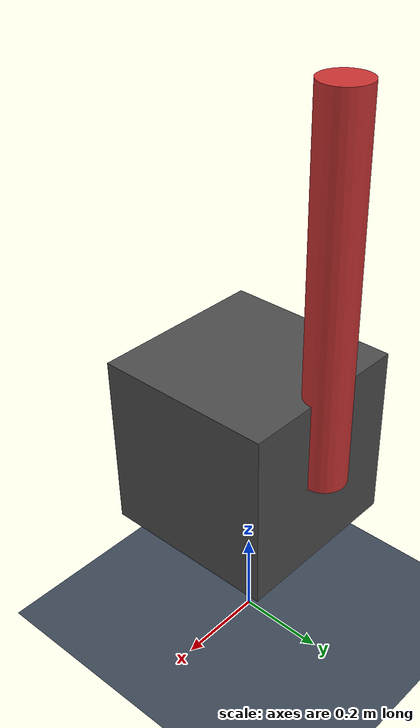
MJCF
<mujoco model="haste_relatorio_ORIGINAL_com_bug">
  <!-- Modelo ORIGINAL do relatório (pos="0 0.2 0"): a haste interpenetra a caixa em 5 cm e a junta fica travada. Mantido só como contraprova (run.py a executa). -->
  <option timestep="0.005"/>
  <visual><global offwidth="1280" offheight="720"/></visual>
  <statistic center="0 0 0.5" extent="1.6"/>
  <asset>
    <texture type="skybox" builtin="gradient" rgb1="0.5 0.7 0.95" rgb2="0.05 0.07 0.12" width="512" height="3072"/>
    <texture name="grade" type="2d" builtin="checker" rgb1="0.2 0.24 0.3" rgb2="0.28 0.33 0.4" width="512" height="512" mark="edge" markrgb="0.55 0.6 0.66"/>
    <material name="piso" texture="grade" texrepeat="6 6" texuniform="true" reflectance="0"/>
  </asset>
  <worldbody>
    <light pos="0 1 2" dir="0 -1 -1" type="directional" diffuse="0.9 0.9 0.9"/>
    <camera name="lateral" pos="0 -2.6 0.9" xyaxes="1 0 0 0 0.3 1"/>
    <geom name="chao" type="plane" size="3 3 0.1" material="piso"/>
    <body name="base_robotica" pos="0 0 0.5">
      <geom name="caixa" type="box" size="0.2 0.2 0.2" rgba="0.3 0.3 0.3 1"/>
      <body name="haste_articulada" pos="0 0.2 0">
        <joint name="junta_motor" type="hinge" axis="0 1 0"/>
        <geom name="haste" type="cylinder" size="0.05 0.4" pos="0 0 0.4" rgba="0.8 0.2 0.2 1"/>
      </body>
    </body>
  </worldbody>
  <actuator>
    <motor name="atuador_principal" joint="junta_motor" gear="1"/>
  </actuator>
</mujoco>
